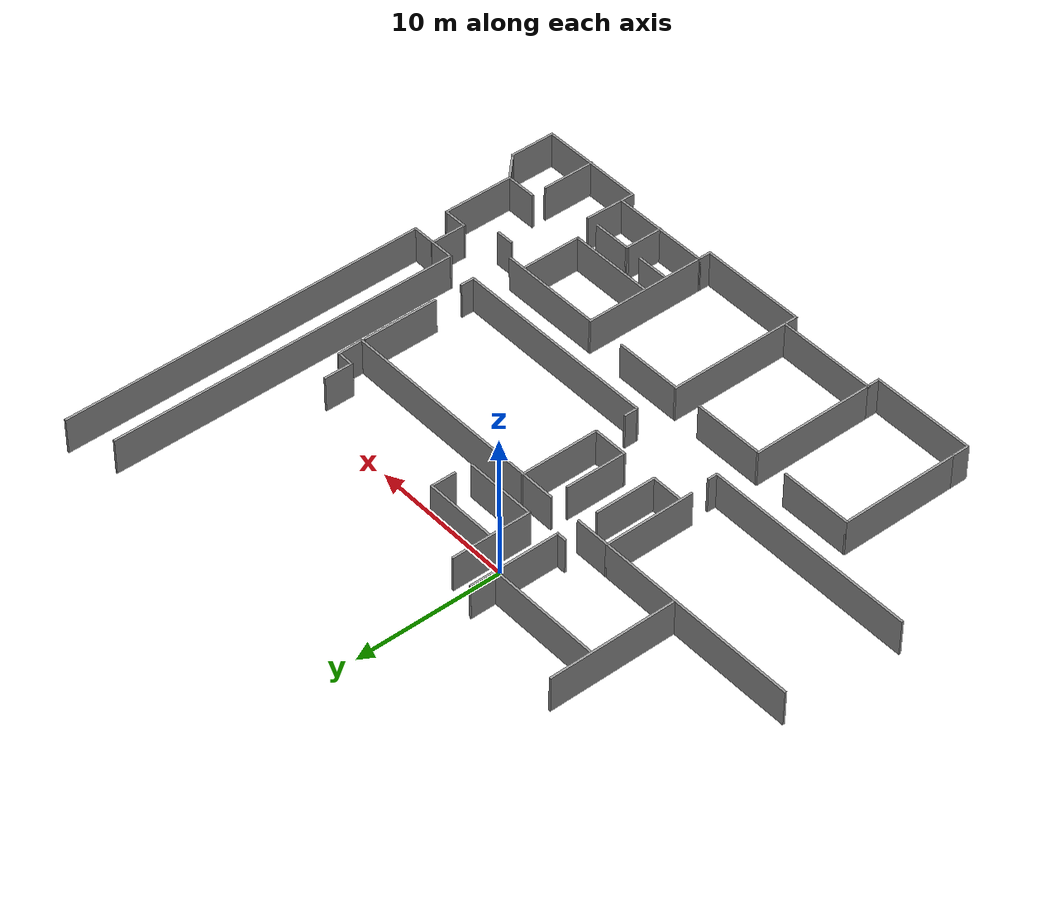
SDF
<sdf version="1.6">
 <model name="Untitled">
  <pose>-0.441057 -0.068194 0 0 -0 0</pose>
  <link name="Wall_279">
   <collision name="Wall_279_Collision">
    <geometry><box><size>1.25 0.15 2.5</size></box></geometry>
    <pose>0 0 1.25 0 -0 0</pose>
   </collision>
   <visual name="Wall_279_Visual">
    <pose>0 0 1.25 0 -0 0</pose>
    <geometry><box><size>1.25 0.15 2.5</size></box></geometry>
    <material>
     <script><uri>file://media/materials/scripts/gazebo.material</uri><name>Gazebo/Grey</name></script>
     <ambient>1 1 1 1</ambient>
    </material>
    <meta><layer>0</layer></meta>
   </visual>
   <pose>-10.5648 -23.9764 0 0 -0 -1.5708</pose>
  </link>
  <link name="Wall_280">
   <collision name="Wall_280_Collision">
    <geometry><box><size>7.25 0.15 2.5</size></box></geometry>
    <pose>0 0 1.25 0 -0 0</pose>
   </collision>
   <visual name="Wall_280_Visual">
    <pose>0 0 1.25 0 -0 0</pose>
    <geometry><box><size>7.25 0.15 2.5</size></box></geometry>
    <material>
     <script><uri>file://media/materials/scripts/gazebo.material</uri><name>Gazebo/Grey</name></script>
     <ambient>1 1 1 1</ambient>
    </material>
    <meta><layer>0</layer></meta>
   </visual>
   <pose>-7.01479 -24.5264 0 0 -0 0</pose>
  </link>
  <link name="Wall_281">
   <collision name="Wall_281_Collision">
    <geometry><box><size>1 0.15 2.5</size></box></geometry>
    <pose>0 0 1.25 0 -0 0</pose>
   </collision>
   <visual name="Wall_281_Visual">
    <pose>0 0 1.25 0 -0 0</pose>
    <geometry><box><size>1 0.15 2.5</size></box></geometry>
    <material>
     <script><uri>file://media/materials/scripts/gazebo.material</uri><name>Gazebo/Grey</name></script>
     <ambient>1 1 1 1</ambient>
    </material>
    <meta><layer>0</layer></meta>
   </visual>
   <pose>-3.46479 -24.1014 0 0 -0 1.5708</pose>
  </link>
  <link name="Wall_282">
   <collision name="Wall_282_Collision">
    <geometry><box><size>7 0.15 2.5</size></box></geometry>
    <pose>0 0 1.25 0 -0 0</pose>
   </collision>
   <visual name="Wall_282_Visual">
    <pose>0 0 1.25 0 -0 0</pose>
    <geometry><box><size>7 0.15 2.5</size></box></geometry>
    <material>
     <script><uri>file://media/materials/scripts/gazebo.material</uri><name>Gazebo/Grey</name></script>
     <ambient>1 1 1 1</ambient>
    </material>
    <meta><layer>0</layer></meta>
   </visual>
   <pose>-0.039787 -23.6764 0 0 -0 0</pose>
  </link>
  <link name="Wall_283">
   <collision name="Wall_283_Collision">
    <geometry><box><size>1 0.15 2.5</size></box></geometry>
    <pose>0 0 1.25 0 -0 0</pose>
   </collision>
   <visual name="Wall_283_Visual">
    <pose>0 0 1.25 0 -0 0</pose>
    <geometry><box><size>1 0.15 2.5</size></box></geometry>
    <material>
     <script><uri>file://media/materials/scripts/gazebo.material</uri><name>Gazebo/Grey</name></script>
     <ambient>1 1 1 1</ambient>
    </material>
    <meta><layer>0</layer></meta>
   </visual>
   <pose>3.38521 -24.1014 0 0 -0 -1.5708</pose>
  </link>
  <link name="Wall_284">
   <collision name="Wall_284_Collision">
    <geometry><box><size>7.5 0.15 2.5</size></box></geometry>
    <pose>0 0 1.25 0 -0 0</pose>
   </collision>
   <visual name="Wall_284_Visual">
    <pose>0 0 1.25 0 -0 0</pose>
    <geometry><box><size>7.5 0.15 2.5</size></box></geometry>
    <material>
     <script><uri>file://media/materials/scripts/gazebo.material</uri><name>Gazebo/Grey</name></script>
     <ambient>1 1 1 1</ambient>
    </material>
    <meta><layer>0</layer></meta>
   </visual>
   <pose>7.06021 -24.5264 0 0 -0 0</pose>
  </link>
  <link name="Wall_285">
   <collision name="Wall_285_Collision">
    <geometry><box><size>1 0.15 2.5</size></box></geometry>
    <pose>0 0 1.25 0 -0 0</pose>
   </collision>
   <visual name="Wall_285_Visual">
    <pose>0 0 1.25 0 -0 0</pose>
    <geometry><box><size>1 0.15 2.5</size></box></geometry>
    <material>
     <script><uri>file://media/materials/scripts/gazebo.material</uri><name>Gazebo/Grey</name></script>
     <ambient>1 1 1 1</ambient>
    </material>
    <meta><layer>0</layer></meta>
   </visual>
   <pose>10.7352 -24.1014 0 0 -0 1.5708</pose>
  </link>
  <link name="Wall_287">
   <collision name="Wall_287_Collision">
    <geometry><box><size>7 0.15 2.5</size></box></geometry>
    <pose>0 0 1.25 0 -0 0</pose>
   </collision>
   <visual name="Wall_287_Visual">
    <pose>0 0 1.25 0 -0 0</pose>
    <geometry><box><size>7 0.15 2.5</size></box></geometry>
    <material>
     <script><uri>file://media/materials/scripts/gazebo.material</uri><name>Gazebo/Grey</name></script>
     <ambient>1 1 1 1</ambient>
    </material>
    <meta><layer>0</layer></meta>
   </visual>
   <pose>14.1602 -23.6764 0 0 -0 0</pose>
  </link>
  <link name="Wall_288">
   <collision name="Wall_288_Collision">
    <geometry><box><size>1 0.15 2.5</size></box></geometry>
    <pose>0 0 1.25 0 -0 0</pose>
   </collision>
   <visual name="Wall_288_Visual">
    <pose>0 0 1.25 0 -0 0</pose>
    <geometry><box><size>1 0.15 2.5</size></box></geometry>
    <material>
     <script><uri>file://media/materials/scripts/gazebo.material</uri><name>Gazebo/Grey</name></script>
     <ambient>1 1 1 1</ambient>
    </material>
    <meta><layer>0</layer></meta>
   </visual>
   <pose>17.5852 -24.1014 0 0 -0 -1.5708</pose>
  </link>
  <link name="Wall_289">
   <collision name="Wall_289_Collision">
    <geometry><box><size>7.5 0.15 2.5</size></box></geometry>
    <pose>0 0 1.25 0 -0 0</pose>
   </collision>
   <visual name="Wall_289_Visual">
    <pose>0 0 1.25 0 -0 0</pose>
    <geometry><box><size>7.5 0.15 2.5</size></box></geometry>
    <material>
     <script><uri>file://media/materials/scripts/gazebo.material</uri><name>Gazebo/Grey</name></script>
     <ambient>1 1 1 1</ambient>
    </material>
    <meta><layer>0</layer></meta>
   </visual>
   <pose>21.2602 -24.5264 0 0 -0 0</pose>
  </link>
  <link name="Wall_290">
   <collision name="Wall_290_Collision">
    <geometry><box><size>3.25 0.15 2.5</size></box></geometry>
    <pose>0 0 1.25 0 -0 0</pose>
   </collision>
   <visual name="Wall_290_Visual">
    <pose>0 0 1.25 0 -0 0</pose>
    <geometry><box><size>3.25 0.15 2.5</size></box></geometry>
    <material>
     <script><uri>file://media/materials/scripts/gazebo.material</uri><name>Gazebo/Grey</name></script>
     <ambient>1 1 1 1</ambient>
    </material>
    <meta><layer>0</layer></meta>
   </visual>
   <pose>24.9352 -22.9764 0 0 -0 1.5708</pose>
  </link>
  <link name="Wall_291">
   <collision name="Wall_291_Collision">
    <geometry><box><size>2.25 0.15 2.5</size></box></geometry>
    <pose>0 0 1.25 0 -0 0</pose>
   </collision>
   <visual name="Wall_291_Visual">
    <pose>0 0 1.25 0 -0 0</pose>
    <geometry><box><size>2.25 0.15 2.5</size></box></geometry>
    <material>
     <script><uri>file://media/materials/scripts/gazebo.material</uri><name>Gazebo/Grey</name></script>
     <ambient>1 1 1 1</ambient>
    </material>
    <meta><layer>0</layer></meta>
   </visual>
   <pose>24.1928 -20.6839 0 0 -0 2.35619</pose>
  </link>
  <link name="Wall_292">
   <collision name="Wall_292_Collision">
    <geometry><box><size>5 0.15 2.5</size></box></geometry>
    <pose>0 0 1.25 0 -0 0</pose>
   </collision>
   <visual name="Wall_292_Visual">
    <pose>0 0 1.25 0 -0 0</pose>
    <geometry><box><size>5 0.15 2.5</size></box></geometry>
    <material>
     <script><uri>file://media/materials/scripts/gazebo.material</uri><name>Gazebo/Grey</name></script>
     <ambient>1 1 1 1</ambient>
    </material>
    <meta><layer>0</layer></meta>
   </visual>
   <pose>23.4503 -17.5165 0 0 -0 1.5708</pose>
  </link>
  <link name="Wall_293">
   <collision name="Wall_293_Collision">
    <geometry><box><size>1.75 0.15 2.5</size></box></geometry>
    <pose>0 0 1.25 0 -0 0</pose>
   </collision>
   <visual name="Wall_293_Visual">
    <pose>0 0 1.25 0 -0 0</pose>
    <geometry><box><size>1.75 0.15 2.5</size></box></geometry>
    <material>
     <script><uri>file://media/materials/scripts/gazebo.material</uri><name>Gazebo/Grey</name></script>
     <ambient>1 1 1 1</ambient>
    </material>
    <meta><layer>0</layer></meta>
   </visual>
   <pose>22.6503 -15.0915 0 0 -0 3.14159</pose>
  </link>
  <link name="Wall_294">
   <collision name="Wall_294_Collision">
    <geometry><box><size>2.5 0.15 2.5</size></box></geometry>
    <pose>0 0 1.25 0 -0 0</pose>
   </collision>
   <visual name="Wall_294_Visual">
    <pose>0 0 1.25 0 -0 0</pose>
    <geometry><box><size>2.5 0.15 2.5</size></box></geometry>
    <material>
     <script><uri>file://media/materials/scripts/gazebo.material</uri><name>Gazebo/Grey</name></script>
     <ambient>1 1 1 1</ambient>
    </material>
    <meta><layer>0</layer></meta>
   </visual>
   <pose>21.8503 -13.9165 0 0 -0 1.5708</pose>
  </link>
  <link name="Wall_295">
   <collision name="Wall_295_Collision">
    <geometry><box><size>1.75 0.15 2.5</size></box></geometry>
    <pose>0 0 1.25 0 -0 0</pose>
   </collision>
   <visual name="Wall_295_Visual">
    <pose>0 0 1.25 0 -0 0</pose>
    <geometry><box><size>1.75 0.15 2.5</size></box></geometry>
    <material>
     <script><uri>file://media/materials/scripts/gazebo.material</uri><name>Gazebo/Grey</name></script>
     <ambient>1 1 1 1</ambient>
    </material>
    <meta><layer>0</layer></meta>
   </visual>
   <pose>22.6503 -12.7415 0 0 -0 0</pose>
  </link>
  <link name="Wall_298">
   <collision name="Wall_298_Collision">
    <geometry><box><size>8.5 0.15 2.5</size></box></geometry>
    <pose>0 0 1.25 0 -0 0</pose>
   </collision>
   <visual name="Wall_298_Visual">
    <pose>0 0 1.25 0 -0 0</pose>
    <geometry><box><size>8.5 0.15 2.5</size></box></geometry>
    <material>
     <script><uri>file://media/materials/scripts/gazebo.material</uri><name>Gazebo/Grey</name></script>
     <ambient>1 1 1 1</ambient>
    </material>
    <meta><layer>0</layer></meta>
   </visual>
   <pose>10.7352 -19.5014 0 0 -0 1.5708</pose>
  </link>
  <link name="Wall_299">
   <collision name="Wall_299_Collision">
    <geometry><box><size>7.25 0.15 2.5</size></box></geometry>
    <pose>0 0 1.25 0 -0 0</pose>
   </collision>
   <visual name="Wall_299_Visual">
    <pose>0 0 1.25 0 -0 0</pose>
    <geometry><box><size>7.25 0.15 2.5</size></box></geometry>
    <material>
     <script><uri>file://media/materials/scripts/gazebo.material</uri><name>Gazebo/Grey</name></script>
     <ambient>1 1 1 1</ambient>
    </material>
    <meta><layer>0</layer></meta>
   </visual>
   <pose>14.2852 -15.3264 0 0 -0 0</pose>
  </link>
  <link name="Wall_301">
   <collision name="Wall_301_Collision">
    <geometry><box><size>6 0.15 2.5</size></box></geometry>
    <pose>0 0 1.25 0 -0 0</pose>
   </collision>
   <visual name="Wall_301_Visual">
    <pose>0 0 1.25 0 -0 0</pose>
    <geometry><box><size>6 0.15 2.5</size></box></geometry>
    <material>
     <script><uri>file://media/materials/scripts/gazebo.material</uri><name>Gazebo/Grey</name></script>
     <ambient>1 1 1 1</ambient>
    </material>
    <meta><layer>0</layer></meta>
   </visual>
   <pose>13.7673 -19.4861 0 0 -0 0</pose>
  </link>
  <link name="Wall_302">
   <collision name="Wall_302_Collision">
    <geometry><box><size>4.25 0.15 2.5</size></box></geometry>
    <pose>0 0 1.25 0 -0 0</pose>
   </collision>
   <visual name="Wall_302_Visual">
    <pose>0 0 1.25 0 -0 0</pose>
    <geometry><box><size>4.25 0.15 2.5</size></box></geometry>
    <material>
     <script><uri>file://media/materials/scripts/gazebo.material</uri><name>Gazebo/Grey</name></script>
     <ambient>1 1 1 1</ambient>
    </material>
    <meta><layer>0</layer></meta>
   </visual>
   <pose>16.6923 -17.4361 0 0 -0 1.5708</pose>
  </link>
  <link name="Wall_304">
   <collision name="Wall_304_Collision">
    <geometry><box><size>2.75 0.15 2.5</size></box></geometry>
    <pose>0 0 1.25 0 -0 0</pose>
   </collision>
   <visual name="Wall_304_Visual">
    <pose>0 0 1.25 0 -0 0</pose>
    <geometry><box><size>2.75 0.15 2.5</size></box></geometry>
    <material>
     <script><uri>file://media/materials/scripts/gazebo.material</uri><name>Gazebo/Grey</name></script>
     <ambient>1 1 1 1</ambient>
    </material>
    <meta><layer>0</layer></meta>
   </visual>
   <pose>14.1825 -22.4168 0 0 -0 -1.5708</pose>
  </link>
  <link name="Wall_306">
   <collision name="Wall_306_Collision">
    <geometry><box><size>2.25 0.15 2.5</size></box></geometry>
    <pose>0 0 1.25 0 -0 0</pose>
   </collision>
   <visual name="Wall_306_Visual">
    <pose>0 0 1.25 0 -0 0</pose>
    <geometry><box><size>2.25 0.15 2.5</size></box></geometry>
    <material>
     <script><uri>file://media/materials/scripts/gazebo.material</uri><name>Gazebo/Grey</name></script>
     <ambient>1 1 1 1</ambient>
    </material>
    <meta><layer>0</layer></meta>
   </visual>
   <pose>11.8923 -21.0905 0 0 -0 0</pose>
  </link>
  <link name="Wall_308">
   <collision name="Wall_308_Collision">
    <geometry><box><size>2.75 0.15 2.5</size></box></geometry>
    <pose>0 0 1.25 0 -0 0</pose>
   </collision>
   <visual name="Wall_308_Visual">
    <pose>0 0 1.25 0 -0 0</pose>
    <geometry><box><size>2.75 0.15 2.5</size></box></geometry>
    <material>
     <script><uri>file://media/materials/scripts/gazebo.material</uri><name>Gazebo/Grey</name></script>
     <ambient>1 1 1 1</ambient>
    </material>
    <meta><layer>0</layer></meta>
   </visual>
   <pose>15.4825 -21.1168 0 0 -0 0</pose>
  </link>
  <link name="Wall_310">
   <collision name="Wall_310_Collision">
    <geometry><box><size>2.68425 0.15 2.5</size></box></geometry>
    <pose>0 0 1.25 0 -0 0</pose>
   </collision>
   <visual name="Wall_310_Visual">
    <pose>0 0 1.25 0 -0 0</pose>
    <geometry><box><size>2.68425 0.15 2.5</size></box></geometry>
    <material>
     <script><uri>file://media/materials/scripts/gazebo.material</uri><name>Gazebo/Grey</name></script>
     <ambient>1 1 1 1</ambient>
    </material>
    <meta><layer>0</layer></meta>
   </visual>
   <pose>17.6197 -22.4097 0 0 -0 -1.59801</pose>
  </link>
  <link name="Wall_312">
   <collision name="Wall_312_Collision">
    <geometry><box><size>3.75 0.15 2.5</size></box></geometry>
    <pose>0 0 1.25 0 -0 0</pose>
   </collision>
   <visual name="Wall_312_Visual">
    <pose>0 0 1.25 0 -0 0</pose>
    <geometry><box><size>3.75 0.15 2.5</size></box></geometry>
    <material>
     <script><uri>file://media/materials/scripts/gazebo.material</uri><name>Gazebo/Grey</name></script>
     <ambient>1 1 1 1</ambient>
    </material>
    <meta><layer>0</layer></meta>
   </visual>
   <pose>21.3626 -22.7853 0 0 -0 -1.5708</pose>
  </link>
  <link name="Wall_314">
   <collision name="Wall_314_Collision">
    <geometry><box><size>2.25 0.15 2.5</size></box></geometry>
    <pose>0 0 1.25 0 -0 0</pose>
   </collision>
   <visual name="Wall_314_Visual">
    <pose>0 0 1.25 0 -0 0</pose>
    <geometry><box><size>2.25 0.15 2.5</size></box></geometry>
    <material>
     <script><uri>file://media/materials/scripts/gazebo.material</uri><name>Gazebo/Grey</name></script>
     <ambient>1 1 1 1</ambient>
    </material>
    <meta><layer>0</layer></meta>
   </visual>
   <pose>22.4003 -19.9415 0 0 -0 3.14159</pose>
  </link>
  <link name="Wall_316">
   <collision name="Wall_316_Collision">
    <geometry><box><size>1.25 0.15 2.5</size></box></geometry>
    <pose>0 0 1.25 0 -0 0</pose>
   </collision>
   <visual name="Wall_316_Visual">
    <pose>0 0 1.25 0 -0 0</pose>
    <geometry><box><size>1.25 0.15 2.5</size></box></geometry>
    <material>
     <script><uri>file://media/materials/scripts/gazebo.material</uri><name>Gazebo/Grey</name></script>
     <ambient>1 1 1 1</ambient>
    </material>
    <meta><layer>0</layer></meta>
   </visual>
   <pose>19.4666 -16.2511 0 0 -0 0</pose>
  </link>
  <link name="Wall_318">
   <collision name="Wall_318_Collision">
    <geometry><box><size>1 0.15 2.5</size></box></geometry>
    <pose>0 0 1.25 0 -0 0</pose>
   </collision>
   <visual name="Wall_318_Visual">
    <pose>0 0 1.25 0 -0 0</pose>
    <geometry><box><size>1 0.15 2.5</size></box></geometry>
    <material>
     <script><uri>file://media/materials/scripts/gazebo.material</uri><name>Gazebo/Grey</name></script>
     <ambient>1 1 1 1</ambient>
    </material>
    <meta><layer>0</layer></meta>
   </visual>
   <pose>3.53073 -12.0998 0 0 -0 -1.5708</pose>
  </link>
  <link name="Wall_319">
   <collision name="Wall_319_Collision">
    <geometry><box><size>14.5 0.15 2.5</size></box></geometry>
    <pose>0 0 1.25 0 -0 0</pose>
   </collision>
   <visual name="Wall_319_Visual">
    <pose>0 0 1.25 0 -0 0</pose>
    <geometry><box><size>14.5 0.15 2.5</size></box></geometry>
    <material>
     <script><uri>file://media/materials/scripts/gazebo.material</uri><name>Gazebo/Grey</name></script>
     <ambient>1 1 1 1</ambient>
    </material>
    <meta><layer>0</layer></meta>
   </visual>
   <pose>10.7057 -12.5248 0 0 -0 0</pose>
  </link>
  <link name="Wall_320">
   <collision name="Wall_320_Collision">
    <geometry><box><size>1 0.15 2.5</size></box></geometry>
    <pose>0 0 1.25 0 -0 0</pose>
   </collision>
   <visual name="Wall_320_Visual">
    <pose>0 0 1.25 0 -0 0</pose>
    <geometry><box><size>1 0.15 2.5</size></box></geometry>
    <material>
     <script><uri>file://media/materials/scripts/gazebo.material</uri><name>Gazebo/Grey</name></script>
     <ambient>1 1 1 1</ambient>
    </material>
    <meta><layer>0</layer></meta>
   </visual>
   <pose>17.8807 -12.0998 0 0 -0 1.5708</pose>
  </link>
  <link name="Wall_322">
   <collision name="Wall_322_Collision">
    <geometry><box><size>4.75 0.15 2.5</size></box></geometry>
    <pose>0 0 1.25 0 -0 0</pose>
   </collision>
   <visual name="Wall_322_Visual">
    <pose>0 0 1.25 0 -0 0</pose>
    <geometry><box><size>4.75 0.15 2.5</size></box></geometry>
    <material>
     <script><uri>file://media/materials/scripts/gazebo.material</uri><name>Gazebo/Grey</name></script>
     <ambient>1 1 1 1</ambient>
    </material>
    <meta><layer>0</layer></meta>
   </visual>
   <pose>5.72553 -15.3306 0 0 -0 0</pose>
  </link>
  <link name="Wall_325">
   <collision name="Wall_325_Collision">
    <geometry><box><size>8.5 0.15 2.5</size></box></geometry>
    <pose>0 0 1.25 0 -0 0</pose>
   </collision>
   <visual name="Wall_325_Visual">
    <pose>0 0 1.25 0 -0 0</pose>
    <geometry><box><size>8.5 0.15 2.5</size></box></geometry>
    <material>
     <script><uri>file://media/materials/scripts/gazebo.material</uri><name>Gazebo/Grey</name></script>
     <ambient>1 1 1 1</ambient>
    </material>
    <meta><layer>0</layer></meta>
   </visual>
   <pose>3.38521 -19.5014 0 0 -0 1.5708</pose>
  </link>
  <link name="Wall_327">
   <collision name="Wall_327_Collision">
    <geometry><box><size>8.5 0.15 2.5</size></box></geometry>
    <pose>0 0 1.25 0 -0 0</pose>
   </collision>
   <visual name="Wall_327_Visual">
    <pose>0 0 1.25 0 -0 0</pose>
    <geometry><box><size>8.5 0.15 2.5</size></box></geometry>
    <material>
     <script><uri>file://media/materials/scripts/gazebo.material</uri><name>Gazebo/Grey</name></script>
     <ambient>1 1 1 1</ambient>
    </material>
    <meta><layer>0</layer></meta>
   </visual>
   <pose>-3.46479 -19.5014 0 0 -0 1.5708</pose>
  </link>
  <link name="Wall_328">
   <collision name="Wall_328_Collision">
    <geometry><box><size>5 0.15 2.5</size></box></geometry>
    <pose>0 0 1.25 0 -0 0</pose>
   </collision>
   <visual name="Wall_328_Visual">
    <pose>0 0 1.25 0 -0 0</pose>
    <geometry><box><size>5 0.15 2.5</size></box></geometry>
    <material>
     <script><uri>file://media/materials/scripts/gazebo.material</uri><name>Gazebo/Grey</name></script>
     <ambient>1 1 1 1</ambient>
    </material>
    <meta><layer>0</layer></meta>
   </visual>
   <pose>-1.03979 -15.3264 0 0 -0 0</pose>
  </link>
  <link name="Wall_330">
   <collision name="Wall_330_Collision">
    <geometry><box><size>8.25 0.15 2.5</size></box></geometry>
    <pose>0 0 1.25 0 -0 0</pose>
   </collision>
   <visual name="Wall_330_Visual">
    <pose>0 0 1.25 0 -0 0</pose>
    <geometry><box><size>8.25 0.15 2.5</size></box></geometry>
    <material>
     <script><uri>file://media/materials/scripts/gazebo.material</uri><name>Gazebo/Grey</name></script>
     <ambient>1 1 1 1</ambient>
    </material>
    <meta><layer>0</layer></meta>
   </visual>
   <pose>-10.5648 -19.3764 0 0 -0 1.5708</pose>
  </link>
  <link name="Wall_331">
   <collision name="Wall_331_Collision">
    <geometry><box><size>5 0.15 2.5</size></box></geometry>
    <pose>0 0 1.25 0 -0 0</pose>
   </collision>
   <visual name="Wall_331_Visual">
    <pose>0 0 1.25 0 -0 0</pose>
    <geometry><box><size>5 0.15 2.5</size></box></geometry>
    <material>
     <script><uri>file://media/materials/scripts/gazebo.material</uri><name>Gazebo/Grey</name></script>
     <ambient>1 1 1 1</ambient>
    </material>
    <meta><layer>0</layer></meta>
   </visual>
   <pose>-8.13979 -15.3264 0 0 -0 0</pose>
  </link>
  <link name="Wall_338">
   <collision name="Wall_338_Collision">
    <geometry><box><size>1.75 0.15 2.5</size></box></geometry>
    <pose>0 0 1.25 0 -0 0</pose>
   </collision>
   <visual name="Wall_338_Visual">
    <pose>0 0 1.25 0 -0 0</pose>
    <geometry><box><size>1.75 0.15 2.5</size></box></geometry>
    <material>
     <script><uri>file://media/materials/scripts/gazebo.material</uri><name>Gazebo/Grey</name></script>
     <ambient>1 1 1 1</ambient>
    </material>
    <meta><layer>0</layer></meta>
   </visual>
   <pose>21.0503 -12.7415 0 0 -0 3.14159</pose>
  </link>
  <link name="Wall_339">
   <collision name="Wall_339_Collision">
    <geometry><box><size>24.25 0.15 2.5</size></box></geometry>
    <pose>0 0 1.25 0 -0 0</pose>
   </collision>
   <visual name="Wall_339_Visual">
    <pose>0 0 1.25 0 -0 0</pose>
    <geometry><box><size>24.25 0.15 2.5</size></box></geometry>
    <material>
     <script><uri>file://media/materials/scripts/gazebo.material</uri><name>Gazebo/Grey</name></script>
     <ambient>1 1 1 1</ambient>
    </material>
    <meta><layer>0</layer></meta>
   </visual>
   <pose>20.2503 -0.691456 0 0 -0 1.5708</pose>
  </link>
  <link name="Wall_344">
   <collision name="Wall_344_Collision">
    <geometry><box><size>25.3502 0.15 2.5</size></box></geometry>
    <pose>0 0 1.25 0 -0 0</pose>
   </collision>
   <visual name="Wall_344_Visual">
    <pose>0 0 1.25 0 -0 0</pose>
    <geometry><box><size>25.3502 0.15 2.5</size></box></geometry>
    <material>
     <script><uri>file://media/materials/scripts/gazebo.material</uri><name>Gazebo/Grey</name></script>
     <ambient>1 1 1 1</ambient>
    </material>
    <meta><layer>0</layer></meta>
   </visual>
   <pose>23.4003 -0.141456 0 0 -0 -1.56683</pose>
  </link>
  <link name="Wall_347">
   <collision name="Wall_347_Collision">
    <geometry><box><size>14.75 0.15 2.5</size></box></geometry>
    <pose>0 0 1.25 0 -0 0</pose>
   </collision>
   <visual name="Wall_347_Visual">
    <pose>0 0 1.25 0 -0 0</pose>
    <geometry><box><size>14.75 0.15 2.5</size></box></geometry>
    <material>
     <script><uri>file://media/materials/scripts/gazebo.material</uri><name>Gazebo/Grey</name></script>
     <ambient>1 1 1 1</ambient>
    </material>
    <meta><layer>0</layer></meta>
   </visual>
   <pose>-10.5511 -12.4191 0 0 -0 0</pose>
  </link>
  <link name="Wall_348">
   <collision name="Wall_348_Collision">
    <geometry><box><size>0.75 0.15 2.5</size></box></geometry>
    <pose>0 0 1.25 0 -0 0</pose>
   </collision>
   <visual name="Wall_348_Visual">
    <pose>0 0 1.25 0 -0 0</pose>
    <geometry><box><size>0.75 0.15 2.5</size></box></geometry>
    <material>
     <script><uri>file://media/materials/scripts/gazebo.material</uri><name>Gazebo/Grey</name></script>
     <ambient>1 1 1 1</ambient>
    </material>
    <meta><layer>0</layer></meta>
   </visual>
   <pose>-3.25106 -12.1191 0 0 -0 1.5708</pose>
  </link>
  <link name="Wall_364">
   <collision name="Wall_364_Collision">
    <geometry><box><size>14.25 0.15 2.5</size></box></geometry>
    <pose>0 0 1.25 0 -0 0</pose>
   </collision>
   <visual name="Wall_364_Visual">
    <pose>0 0 1.25 0 -0 0</pose>
    <geometry><box><size>14.25 0.15 2.5</size></box></geometry>
    <material>
     <script><uri>file://media/materials/scripts/gazebo.material</uri><name>Gazebo/Grey</name></script>
     <ambient>1 1 1 1</ambient>
    </material>
    <meta><layer>0</layer></meta>
   </visual>
   <pose>-10.5228 -4.22995 0 0 -0 0</pose>
  </link>
  <link name="Wall_365">
   <collision name="Wall_365_Collision">
    <geometry><box><size>6.25 0.15 2.5</size></box></geometry>
    <pose>0 0 1.25 0 -0 0</pose>
   </collision>
   <visual name="Wall_365_Visual">
    <pose>0 0 1.25 0 -0 0</pose>
    <geometry><box><size>6.25 0.15 2.5</size></box></geometry>
    <material>
     <script><uri>file://media/materials/scripts/gazebo.material</uri><name>Gazebo/Grey</name></script>
     <ambient>1 1 1 1</ambient>
    </material>
    <meta><layer>0</layer></meta>
   </visual>
   <pose>-3.4728 -7.27995 0 0 -0 -1.5708</pose>
  </link>
  <link name="Wall_488">
   <collision name="Wall_488_Collision">
    <geometry><box><size>2.5 0.15 2.5</size></box></geometry>
    <pose>0 0 1.25 0 -0 0</pose>
   </collision>
   <visual name="Wall_488_Visual">
    <pose>0 0 1.25 0 -0 0</pose>
    <geometry><box><size>2.5 0.15 2.5</size></box></geometry>
    <material>
     <script><uri>file://media/materials/scripts/gazebo.material</uri><name>Gazebo/Grey</name></script>
     <ambient>1 1 1 1</ambient>
    </material>
    <meta><layer>0</layer></meta>
   </visual>
   <pose>-2.2978 -4.22995 0 0 -0 0</pose>
  </link>
  <link name="Wall_490">
   <collision name="Wall_490_Collision">
    <geometry><box><size>2.25 0.15 2.5</size></box></geometry>
    <pose>0 0 1.25 0 -0 0</pose>
   </collision>
   <visual name="Wall_490_Visual">
    <pose>0 0 1.25 0 -0 0</pose>
    <geometry><box><size>2.25 0.15 2.5</size></box></geometry>
    <material>
     <script><uri>file://media/materials/scripts/gazebo.material</uri><name>Gazebo/Grey</name></script>
     <ambient>1 1 1 1</ambient>
    </material>
    <meta><layer>0</layer></meta>
   </visual>
   <pose>-2.31253 -9.56503 0 0 -0 0</pose>
  </link>
  <link name="Wall_491">
   <collision name="Wall_491_Collision">
    <geometry><box><size>4.25 0.15 2.5</size></box></geometry>
    <pose>0 0 1.25 0 -0 0</pose>
   </collision>
   <visual name="Wall_491_Visual">
    <pose>0 0 1.25 0 -0 0</pose>
    <geometry><box><size>4.25 0.15 2.5</size></box></geometry>
    <material>
     <script><uri>file://media/materials/scripts/gazebo.material</uri><name>Gazebo/Grey</name></script>
     <ambient>1 1 1 1</ambient>
    </material>
    <meta><layer>0</layer></meta>
   </visual>
   <pose>-1.26253 -7.51503 0 0 -0 1.5708</pose>
  </link>
  <link name="Wall_493">
   <collision name="Wall_493_Collision">
    <geometry><box><size>16.75 0.15 2.5</size></box></geometry>
    <pose>0 0 1.25 0 -0 0</pose>
   </collision>
   <visual name="Wall_493_Visual">
    <pose>0 0 1.25 0 -0 0</pose>
    <geometry><box><size>16.75 0.15 2.5</size></box></geometry>
    <material>
     <script><uri>file://media/materials/scripts/gazebo.material</uri><name>Gazebo/Grey</name></script>
     <ambient>1 1 1 1</ambient>
    </material>
    <meta><layer>0</layer></meta>
   </visual>
   <pose>9.56507 -4.27202 0 0 -0 0</pose>
  </link>
  <link name="Wall_495">
   <collision name="Wall_495_Collision">
    <geometry><box><size>5.25 0.15 2.5</size></box></geometry>
    <pose>0 0 1.25 0 -0 0</pose>
   </collision>
   <visual name="Wall_495_Visual">
    <pose>0 0 1.25 0 -0 0</pose>
    <geometry><box><size>5.25 0.15 2.5</size></box></geometry>
    <material>
     <script><uri>file://media/materials/scripts/gazebo.material</uri><name>Gazebo/Grey</name></script>
     <ambient>1 1 1 1</ambient>
    </material>
    <meta><layer>0</layer></meta>
   </visual>
   <pose>17.8397 -7.06399 0 0 -0 -1.5708</pose>
  </link>
  <link name="Wall_497">
   <collision name="Wall_497_Collision">
    <geometry><box><size>5.5 0.15 2.5</size></box></geometry>
    <pose>0 0 1.25 0 -0 0</pose>
   </collision>
   <visual name="Wall_497_Visual">
    <pose>0 0 1.25 0 -0 0</pose>
    <geometry><box><size>5.5 0.15 2.5</size></box></geometry>
    <material>
     <script><uri>file://media/materials/scripts/gazebo.material</uri><name>Gazebo/Grey</name></script>
     <ambient>1 1 1 1</ambient>
    </material>
    <meta><layer>0</layer></meta>
   </visual>
   <pose>3.62424 -6.91678 0 0 -0 -1.5708</pose>
  </link>
  <link name="Wall_498">
   <collision name="Wall_498_Collision">
    <geometry><box><size>2.5 0.15 2.5</size></box></geometry>
    <pose>0 0 1.25 0 -0 0</pose>
   </collision>
   <visual name="Wall_498_Visual">
    <pose>0 0 1.25 0 -0 0</pose>
    <geometry><box><size>2.5 0.15 2.5</size></box></geometry>
    <material>
     <script><uri>file://media/materials/scripts/gazebo.material</uri><name>Gazebo/Grey</name></script>
     <ambient>1 1 1 1</ambient>
    </material>
    <meta><layer>0</layer></meta>
   </visual>
   <pose>2.44924 -9.59178 0 0 -0 3.14159</pose>
  </link>
  <link name="Wall_499">
   <collision name="Wall_499_Collision">
    <geometry><box><size>4.25 0.15 2.5</size></box></geometry>
    <pose>0 0 1.25 0 -0 0</pose>
   </collision>
   <visual name="Wall_499_Visual">
    <pose>0 0 1.25 0 -0 0</pose>
    <geometry><box><size>4.25 0.15 2.5</size></box></geometry>
    <material>
     <script><uri>file://media/materials/scripts/gazebo.material</uri><name>Gazebo/Grey</name></script>
     <ambient>1 1 1 1</ambient>
    </material>
    <meta><layer>0</layer></meta>
   </visual>
   <pose>1.27424 -7.54178 0 0 -0 1.5708</pose>
  </link>
  <link name="Wall_507">
   <collision name="Wall_507_Collision">
    <geometry><box><size>6.25 0.15 2.5</size></box></geometry>
    <pose>0 0 1.25 0 -0 0</pose>
   </collision>
   <visual name="Wall_507_Visual">
    <pose>0 0 1.25 0 -0 0</pose>
    <geometry><box><size>6.25 0.15 2.5</size></box></geometry>
    <material>
     <script><uri>file://media/materials/scripts/gazebo.material</uri><name>Gazebo/Grey</name></script>
     <ambient>1 1 1 1</ambient>
    </material>
    <meta><layer>0</layer></meta>
   </visual>
   <pose>-1.12434 0.330153 0 0 -0 -1.5708</pose>
  </link>
  <link name="Wall_508">
   <collision name="Wall_508_Collision">
    <geometry><box><size>0.75 0.15 2.5</size></box></geometry>
    <pose>0 0 1.25 0 -0 0</pose>
   </collision>
   <visual name="Wall_508_Visual">
    <pose>0 0 1.25 0 -0 0</pose>
    <geometry><box><size>0.75 0.15 2.5</size></box></geometry>
    <material>
     <script><uri>file://media/materials/scripts/gazebo.material</uri><name>Gazebo/Grey</name></script>
     <ambient>1 1 1 1</ambient>
    </material>
    <meta><layer>0</layer></meta>
   </visual>
   <pose>-1.42434 -2.71985 0 0 -0 3.14159</pose>
  </link>
  <link name="Wall_512">
   <collision name="Wall_512_Collision">
    <geometry><box><size>8.75 0.15 2.5</size></box></geometry>
    <pose>0 0 1.25 0 -0 0</pose>
   </collision>
   <visual name="Wall_512_Visual">
    <pose>0 0 1.25 0 -0 0</pose>
    <geometry><box><size>8.75 0.15 2.5</size></box></geometry>
    <material>
     <script><uri>file://media/materials/scripts/gazebo.material</uri><name>Gazebo/Grey</name></script>
     <ambient>1 1 1 1</ambient>
    </material>
    <meta><layer>0</layer></meta>
   </visual>
   <pose>-8.98823 0.168999 0 0 -0 -1.5708</pose>
  </link>
  <link name="Wall_514">
   <collision name="Wall_514_Collision">
    <geometry><box><size>7.75 0.15 2.5</size></box></geometry>
    <pose>0 0 1.25 0 -0 0</pose>
   </collision>
   <visual name="Wall_514_Visual">
    <pose>0 0 1.25 0 -0 0</pose>
    <geometry><box><size>7.75 0.15 2.5</size></box></geometry>
    <material>
     <script><uri>file://media/materials/scripts/gazebo.material</uri><name>Gazebo/Grey</name></script>
     <ambient>1 1 1 1</ambient>
    </material>
    <meta><layer>0</layer></meta>
   </visual>
   <pose>-5.03701 1.65614 0 0 -0 0</pose>
  </link>
  <link name="Wall_516">
   <collision name="Wall_516_Collision">
    <geometry><box><size>5.5 0.15 2.5</size></box></geometry>
    <pose>0 0 1.25 0 -0 0</pose>
   </collision>
   <visual name="Wall_516_Visual">
    <pose>0 0 1.25 0 -0 0</pose>
    <geometry><box><size>5.5 0.15 2.5</size></box></geometry>
    <material>
     <script><uri>file://media/materials/scripts/gazebo.material</uri><name>Gazebo/Grey</name></script>
     <ambient>1 1 1 1</ambient>
    </material>
    <meta><layer>0</layer></meta>
   </visual>
   <pose>1.11384 0.100238 0 0 -0 -1.5708</pose>
  </link>
  <link name="Wall_517">
   <collision name="Wall_517_Collision">
    <geometry><box><size>5 0.15 2.5</size></box></geometry>
    <pose>0 0 1.25 0 -0 0</pose>
   </collision>
   <visual name="Wall_517_Visual">
    <pose>0 0 1.25 0 -0 0</pose>
    <geometry><box><size>5 0.15 2.5</size></box></geometry>
    <material>
     <script><uri>file://media/materials/scripts/gazebo.material</uri><name>Gazebo/Grey</name></script>
     <ambient>1 1 1 1</ambient>
    </material>
    <meta><layer>0</layer></meta>
   </visual>
   <pose>3.53884 -2.57476 0 0 -0 0</pose>
  </link>
  <link name="Wall_519">
   <collision name="Wall_519_Collision">
    <geometry><box><size>5 0.15 2.5</size></box></geometry>
    <pose>0 0 1.25 0 -0 0</pose>
   </collision>
   <visual name="Wall_519_Visual">
    <pose>0 0 1.25 0 -0 0</pose>
    <geometry><box><size>5 0.15 2.5</size></box></geometry>
    <material>
     <script><uri>file://media/materials/scripts/gazebo.material</uri><name>Gazebo/Grey</name></script>
     <ambient>1 1 1 1</ambient>
    </material>
    <meta><layer>0</layer></meta>
   </visual>
   <pose>3.69007 0.174103 0 0 -0 0</pose>
  </link>
  <link name="Wall_520">
   <collision name="Wall_520_Collision">
    <geometry><box><size>1.75 0.15 2.5</size></box></geometry>
    <pose>0 0 1.25 0 -0 0</pose>
   </collision>
   <visual name="Wall_520_Visual">
    <pose>0 0 1.25 0 -0 0</pose>
    <geometry><box><size>1.75 0.15 2.5</size></box></geometry>
    <material>
     <script><uri>file://media/materials/scripts/gazebo.material</uri><name>Gazebo/Grey</name></script>
     <ambient>1 1 1 1</ambient>
    </material>
    <meta><layer>0</layer></meta>
   </visual>
   <pose>6.11507 -0.625897 0 0 -0 -1.5708</pose>
  </link>
  <link name="Wall_529">
   <collision name="Wall_529_Collision">
    <geometry><box><size>2 0.15 2.5</size></box></geometry>
    <pose>0 0 1.25 0 -0 0</pose>
   </collision>
   <visual name="Wall_529_Visual">
    <pose>0 0 1.25 0 -0 0</pose>
    <geometry><box><size>2 0.15 2.5</size></box></geometry>
    <material>
     <script><uri>file://media/materials/scripts/gazebo.material</uri><name>Gazebo/Grey</name></script>
     <ambient>1 1 1 1</ambient>
    </material>
    <meta><layer>0</layer></meta>
   </visual>
   <pose>16.7206 -1.65827 0 0 -0 -1.5708</pose>
  </link>
  <link name="Wall_530">
   <collision name="Wall_530_Collision">
    <geometry><box><size>1.25 0.15 2.5</size></box></geometry>
    <pose>0 0 1.25 0 -0 0</pose>
   </collision>
   <visual name="Wall_530_Visual">
    <pose>0 0 1.25 0 -0 0</pose>
    <geometry><box><size>1.25 0.15 2.5</size></box></geometry>
    <material>
     <script><uri>file://media/materials/scripts/gazebo.material</uri><name>Gazebo/Grey</name></script>
     <ambient>1 1 1 1</ambient>
    </material>
    <meta><layer>0</layer></meta>
   </visual>
   <pose>17.2707 -2.58327 0 0 -0 0</pose>
  </link>
  <link name="Wall_531">
   <collision name="Wall_531_Collision">
    <geometry><box><size>1.83934 0.15 2.5</size></box></geometry>
    <pose>0 0 1.25 0 -0 0</pose>
   </collision>
   <visual name="Wall_531_Visual">
    <pose>0 0 1.25 0 -0 0</pose>
    <geometry><box><size>1.83934 0.15 2.5</size></box></geometry>
    <material>
     <script><uri>file://media/materials/scripts/gazebo.material</uri><name>Gazebo/Grey</name></script>
     <ambient>1 1 1 1</ambient>
    </material>
    <meta><layer>0</layer></meta>
   </visual>
   <pose>17.8429 -3.42765 0 0 -0 -1.5445</pose>
  </link>
  <static>1</static>
 </model>
</sdf>
